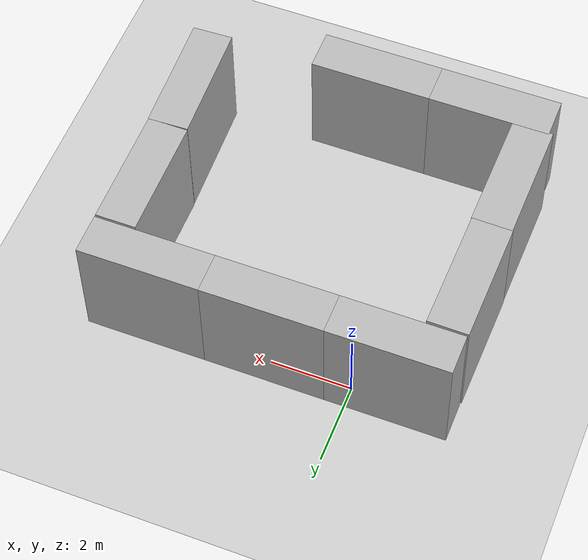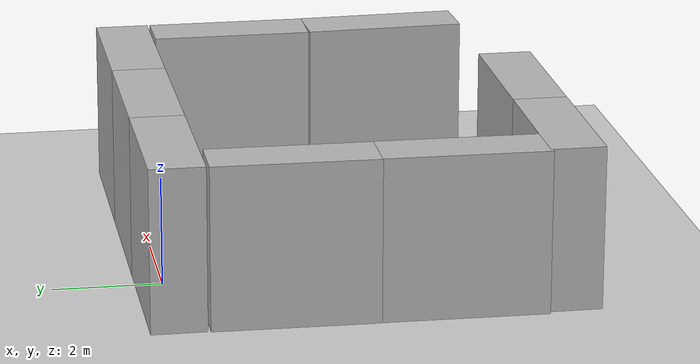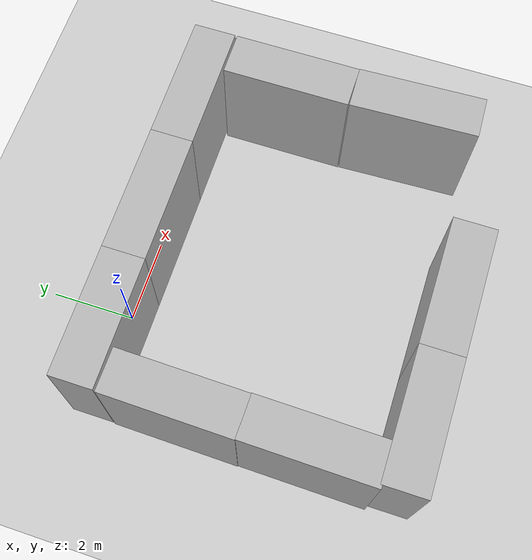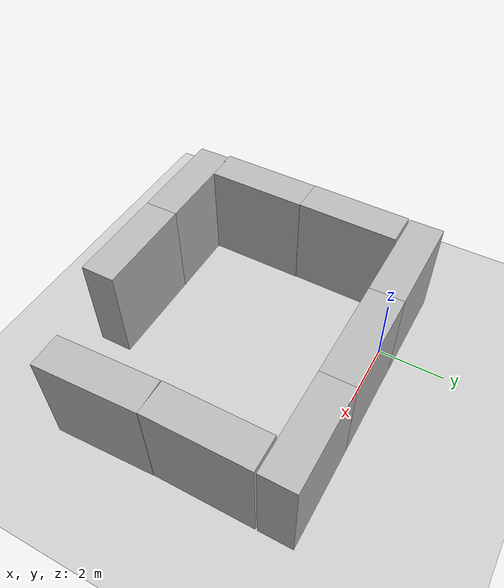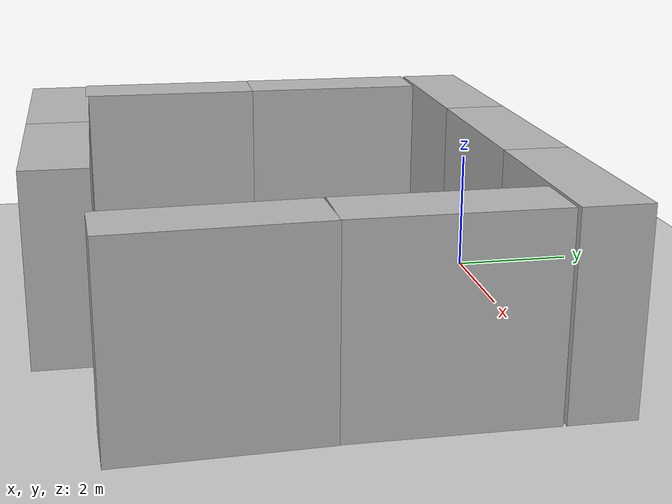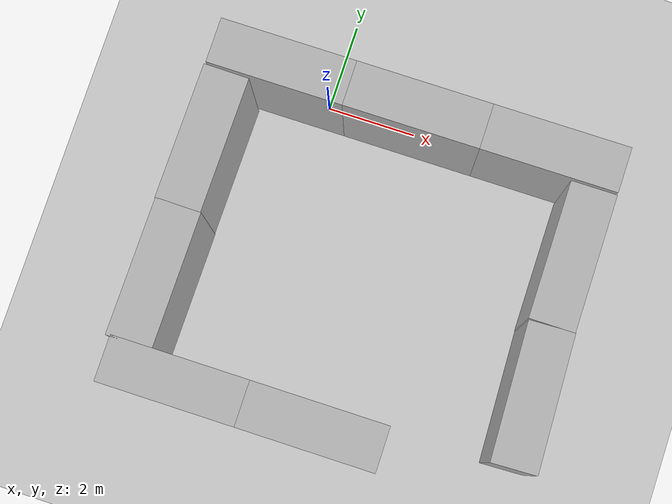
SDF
<sdf version="1.4">
  <world name="default">
    <light name="sun" type="directional">
      <cast_shadows>1</cast_shadows>
      <pose>0 0 10 0 -0 0</pose>
      <diffuse>0.8 0.8 0.8 1</diffuse>
      <specular>0.2 0.2 0.2 1</specular>
      <attenuation>
        <range>1000</range>
        <constant>0.9</constant>
        <linear>0.01</linear>
        <quadratic>0.001</quadratic>
      </attenuation>
      <direction>-0.5 0.1 -0.9</direction>
    </light>
    <physics type="ode">
      <max_step_size>0.001</max_step_size>
      <real_time_factor>1</real_time_factor>
      <real_time_update_rate>1000</real_time_update_rate>
      <gravity>0 0 -9.8</gravity>
    </physics>
    <scene>
      <ambient>0.4 0.4 0.4 1</ambient>
      <background>0.7 0.7 0.7 1</background>
      <shadows>1</shadows>
    </scene>
    <spherical_coordinates>
      <surface_model>EARTH_WGS84</surface_model>
      <latitude_deg>0</latitude_deg>
      <longitude_deg>0</longitude_deg>
      <elevation>0</elevation>
      <heading_deg>0</heading_deg>
    </spherical_coordinates>
    <gui fullscreen="0">
      <camera name="user_camera">
        <pose>2.8183 -6.35232 21.3197 1e-06 1.49564 1.4282</pose>
        <view_controller>orbit</view_controller>
      </camera>
    </gui>
  <model name="brick_box_3x1x3">
    <static>1</static>
    <link name="chassis">
      <pose frame="">-1 0 1.5 0 -0 0</pose>
      <collision name="collision">
        <geometry>
          <box>
            <size>3 1 3</size>
          </box>
        </geometry>
        <max_contacts>10</max_contacts>
        <surface>
          <bounce />
          <friction>
            <ode />
          </friction>
          <contact>
            <ode />
          </contact>
        </surface>
      </collision>
      <visual name="visual">
        <geometry>
          <mesh>
            <uri>model://brick_box_3x1x3/meshes/simple_box.dae</uri>
            <scale>3 1 3</scale>
          </mesh>
        </geometry>
        <material>
          <script>
            <uri>model://brick_box_3x1x3/materials/scripts</uri>
            <uri>model://brick_box_3x1x3/materials/textures</uri>
            <name>BrickBox/Diffuse</name>
          </script>
        </material>
      </visual>
      <velocity_decay>
        <linear>0</linear>
        <angular>0</angular>
      </velocity_decay>
      <self_collide>0</self_collide>
      <kinematic>0</kinematic>
      <gravity>1</gravity>
    </link>
  </model><model name="ground_plane">
    <link name='Wall_0'>
      <collision name='Wall_0_Collision'>
        <geometry>
          <box>
            <size>1.26 0.2 2.5</size>
          </box>
        </geometry>
        <pose>0 0 1.25 0 -0 0</pose>
      </collision>
      <visual name='Wall_0_Visual'>
        <pose>0 0 1.25 0 -0 0</pose>
        <geometry>
          <box>
            <size>1.26 0.2 2.5</size>
          </box>
        </geometry>
        <material>
          <script>
            <uri>file://media/materials/scripts/gazebo.material</uri>
            <name>Gazebo/Grey</name>
          </script>
        </material>
      </visual>
      <velocity_decay>
        <linear>0</linear>
        <angular>0</angular>
      </velocity_decay>
      <pose>-4.54 -2.3 0 0 0 -1.5708</pose>
    </link>
    <static>1</static>
    <link name="link">
      <collision name="collision">
        <geometry>
          <plane>
            <normal>0 0 1</normal>
            <size>100 100</size>
          </plane>
        </geometry>
        <surface>
          <friction>
            <ode>
              <mu>100</mu>
              <mu2>50</mu2>
            </ode>
          </friction>
          <bounce />
          <contact>
            <ode />
          </contact>
        </surface>
        <max_contacts>10</max_contacts>
      </collision>
      <visual name="visual">
        <cast_shadows>0</cast_shadows>
        <geometry>
          <plane>
            <normal>0 0 1</normal>
            <size>100 100</size>
          </plane>
        </geometry>
        <material>
          <script>
            <uri>file://media/materials/scripts/gazebo.material</uri>
            <name>Gazebo/Grey</name>
          </script>
        </material>
      </visual>
      <velocity_decay>
        <linear>0</linear>
        <angular>0</angular>
      </velocity_decay>
      <self_collide>0</self_collide>
      <kinematic>0</kinematic>
      <gravity>1</gravity>
    </link>
  </model><model name="brick_box_3x1x3_1">
    <static>1</static>
    <link name="chassis">
      <pose frame="">5 0 1.5 0 -0 0</pose>
      <collision name="collision">
        <geometry>
          <box>
            <size>3 1 3</size>
          </box>
        </geometry>
        <max_contacts>10</max_contacts>
        <surface>
          <bounce />
          <friction>
            <ode />
          </friction>
          <contact>
            <ode />
          </contact>
        </surface>
      </collision>
      <visual name="visual">
        <geometry>
          <mesh>
            <uri>model://brick_box_3x1x3/meshes/simple_box.dae</uri>
            <scale>3 1 3</scale>
          </mesh>
        </geometry>
        <material>
          <script>
            <uri>model://brick_box_3x1x3/materials/scripts</uri>
            <uri>model://brick_box_3x1x3/materials/textures</uri>
            <name>BrickBox/Diffuse</name>
          </script>
        </material>
      </visual>
      <velocity_decay>
        <linear>0</linear>
        <angular>0</angular>
      </velocity_decay>
      <self_collide>0</self_collide>
      <kinematic>0</kinematic>
      <gravity>1</gravity>
    </link>
  </model><model name="brick_box_3x1x3_0">
    <static>1</static>
    <link name="chassis">
      <pose frame="">2 0 1.5 0 -0 0</pose>
      <collision name="collision">
        <geometry>
          <box>
            <size>3 1 3</size>
          </box>
        </geometry>
        <max_contacts>10</max_contacts>
        <surface>
          <bounce />
          <friction>
            <ode />
          </friction>
          <contact>
            <ode />
          </contact>
        </surface>
      </collision>
      <visual name="visual">
        <geometry>
          <mesh>
            <uri>model://brick_box_3x1x3/meshes/simple_box.dae</uri>
            <scale>3 1 3</scale>
          </mesh>
        </geometry>
        <material>
          <script>
            <uri>model://brick_box_3x1x3/materials/scripts</uri>
            <uri>model://brick_box_3x1x3/materials/textures</uri>
            <name>BrickBox/Diffuse</name>
          </script>
        </material>
      </visual>
      <velocity_decay>
        <linear>0</linear>
        <angular>0</angular>
      </velocity_decay>
      <self_collide>0</self_collide>
      <kinematic>0</kinematic>
      <gravity>1</gravity>
    </link>
  </model><model name="brick_box_3x1x3_3">
    <static>1</static>
    <link name="chassis">
      <pose frame="">-2.07479 -5.04759 1.5 0 -0 1.55796</pose>
      <collision name="collision">
        <geometry>
          <box>
            <size>3 1 3</size>
          </box>
        </geometry>
        <max_contacts>10</max_contacts>
        <surface>
          <bounce />
          <friction>
            <ode />
          </friction>
          <contact>
            <ode />
          </contact>
        </surface>
      </collision>
      <visual name="visual">
        <geometry>
          <mesh>
            <uri>model://brick_box_3x1x3/meshes/simple_box.dae</uri>
            <scale>3 1 3</scale>
          </mesh>
        </geometry>
        <material>
          <script>
            <uri>model://brick_box_3x1x3/materials/scripts</uri>
            <uri>model://brick_box_3x1x3/materials/textures</uri>
            <name>BrickBox/Diffuse</name>
          </script>
        </material>
      </visual>
      <velocity_decay>
        <linear>0</linear>
        <angular>0</angular>
      </velocity_decay>
      <self_collide>0</self_collide>
      <kinematic>0</kinematic>
      <gravity>1</gravity>
    </link>
  </model><model name="brick_box_3x1x3_2">
    <static>1</static>
    <link name="chassis">
      <pose frame="">-2.04548 -2.05511 1.5 0 -0 1.55553</pose>
      <collision name="collision">
        <geometry>
          <box>
            <size>3 1 3</size>
          </box>
        </geometry>
        <max_contacts>10</max_contacts>
        <surface>
          <bounce />
          <friction>
            <ode />
          </friction>
          <contact>
            <ode />
          </contact>
        </surface>
      </collision>
      <visual name="visual">
        <geometry>
          <mesh>
            <uri>model://brick_box_3x1x3/meshes/simple_box.dae</uri>
            <scale>3 1 3</scale>
          </mesh>
        </geometry>
        <material>
          <script>
            <uri>model://brick_box_3x1x3/materials/scripts</uri>
            <uri>model://brick_box_3x1x3/materials/textures</uri>
            <name>BrickBox/Diffuse</name>
          </script>
        </material>
      </visual>
      <velocity_decay>
        <linear>0</linear>
        <angular>0</angular>
      </velocity_decay>
      <self_collide>0</self_collide>
      <kinematic>0</kinematic>
      <gravity>1</gravity>
    </link>
  </model><model name="brick_box_3x1x3_5">
    <static>1</static>
    <link name="chassis">
      <pose frame="">2 -7 1.5 0 -0 0</pose>
      <collision name="collision">
        <geometry>
          <box>
            <size>3 1 3</size>
          </box>
        </geometry>
        <max_contacts>10</max_contacts>
        <surface>
          <bounce />
          <friction>
            <ode />
          </friction>
          <contact>
            <ode />
          </contact>
        </surface>
      </collision>
      <visual name="visual">
        <geometry>
          <mesh>
            <uri>model://brick_box_3x1x3/meshes/simple_box.dae</uri>
            <scale>3 1 3</scale>
          </mesh>
        </geometry>
        <material>
          <script>
            <uri>model://brick_box_3x1x3/materials/scripts</uri>
            <uri>model://brick_box_3x1x3/materials/textures</uri>
            <name>BrickBox/Diffuse</name>
          </script>
        </material>
      </visual>
      <velocity_decay>
        <linear>0</linear>
        <angular>0</angular>
      </velocity_decay>
      <self_collide>0</self_collide>
      <kinematic>0</kinematic>
      <gravity>1</gravity>
    </link>
  </model><model name="brick_box_3x1x3_4">
    <static>1</static>
    <link name="chassis">
      <pose frame="">-1 -7 1.5 0 -0 0</pose>
      <collision name="collision">
        <geometry>
          <box>
            <size>3 1 3</size>
          </box>
        </geometry>
        <max_contacts>10</max_contacts>
        <surface>
          <bounce />
          <friction>
            <ode />
          </friction>
          <contact>
            <ode />
          </contact>
        </surface>
      </collision>
      <visual name="visual">
        <geometry>
          <mesh>
            <uri>model://brick_box_3x1x3/meshes/simple_box.dae</uri>
            <scale>3 1 3</scale>
          </mesh>
        </geometry>
        <material>
          <script>
            <uri>model://brick_box_3x1x3/materials/scripts</uri>
            <uri>model://brick_box_3x1x3/materials/textures</uri>
            <name>BrickBox/Diffuse</name>
          </script>
        </material>
      </visual>
      <velocity_decay>
        <linear>0</linear>
        <angular>0</angular>
      </velocity_decay>
      <self_collide>0</self_collide>
      <kinematic>0</kinematic>
      <gravity>1</gravity>
    </link>
  </model><model name="brick_box_3x1x3_7">
    <static>1</static>
    <link name="chassis">
      <pose frame="">6.06591 -5.05904 1.5 0 -0 1.60732</pose>
      <collision name="collision">
        <geometry>
          <box>
            <size>3 1 3</size>
          </box>
        </geometry>
        <max_contacts>10</max_contacts>
        <surface>
          <bounce />
          <friction>
            <ode />
          </friction>
          <contact>
            <ode />
          </contact>
        </surface>
      </collision>
      <visual name="visual">
        <geometry>
          <mesh>
            <uri>model://brick_box_3x1x3/meshes/simple_box.dae</uri>
            <scale>3 1 3</scale>
          </mesh>
        </geometry>
        <material>
          <script>
            <uri>model://brick_box_3x1x3/materials/scripts</uri>
            <uri>model://brick_box_3x1x3/materials/textures</uri>
            <name>BrickBox/Diffuse</name>
          </script>
        </material>
      </visual>
      <velocity_decay>
        <linear>0</linear>
        <angular>0</angular>
      </velocity_decay>
      <self_collide>0</self_collide>
      <kinematic>0</kinematic>
      <gravity>1</gravity>
    </link>
  </model><model name="brick_box_3x1x3_6">
    <static>1</static>
    <link name="chassis">
      <pose frame="">5.99977 -2.05139 1.5 0 -0 1.57125</pose>
      <collision name="collision">
        <geometry>
          <box>
            <size>3 1 3</size>
          </box>
        </geometry>
        <max_contacts>10</max_contacts>
        <surface>
          <bounce />
          <friction>
            <ode />
          </friction>
          <contact>
            <ode />
          </contact>
        </surface>
      </collision>
      <visual name="visual">
        <geometry>
          <mesh>
            <uri>model://brick_box_3x1x3/meshes/simple_box.dae</uri>
            <scale>3 1 3</scale>
          </mesh>
        </geometry>
        <material>
          <script>
            <uri>model://brick_box_3x1x3/materials/scripts</uri>
            <uri>model://brick_box_3x1x3/materials/textures</uri>
            <name>BrickBox/Diffuse</name>
          </script>
        </material>
      </visual>
      <velocity_decay>
        <linear>0</linear>
        <angular>0</angular>
      </velocity_decay>
      <self_collide>0</self_collide>
      <kinematic>0</kinematic>
      <gravity>1</gravity>
    </link>
  </model></world>
</sdf>
